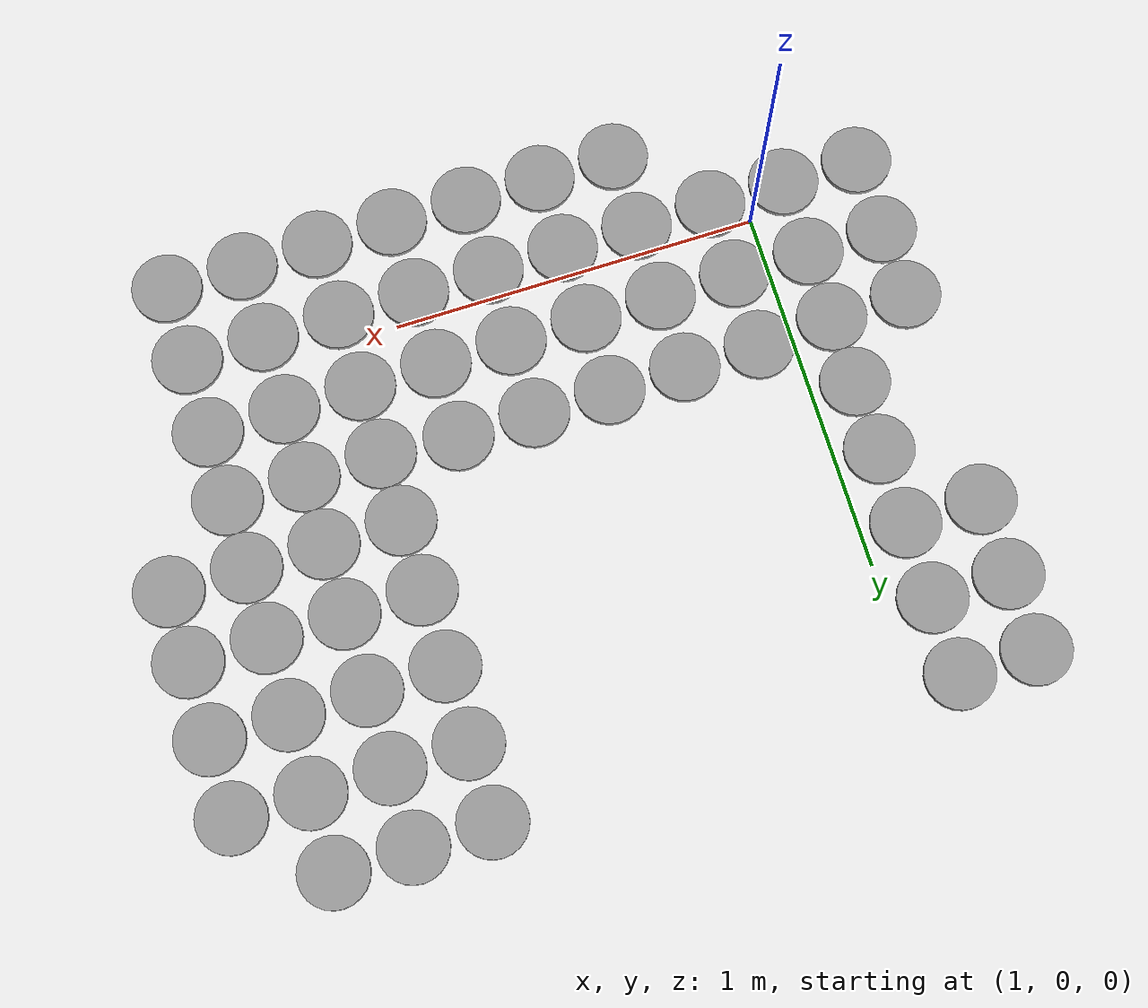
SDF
<sdf version="1.6">
 <world name="default">
  <model name="unit_cylinder_clone_137">
   <pose>0.67 0.92 0.008111 0 -0 0</pose>
   <link name="link">
    <inertial>
     <mass>1</mass>
     <inertia><ixx>0.145833</ixx><ixy>0</ixy><ixz>0</ixz><iyy>0.145833</iyy><iyz>0</iyz><izz>0.125</izz></inertia>
    </inertial>
    <collision name="collision">
     <geometry><cylinder><radius>0.0950718</radius><length>0.0162339</length></cylinder></geometry>
     <max_contacts>5</max_contacts>
    </collision>
    <visual name="visual">
     <geometry><cylinder><radius>0.0950718</radius><length>0.0162339</length></cylinder></geometry>
     <material>
      <script><name>Gazebo/Grey</name><uri>file://media/materials/scripts/gazebo.material</uri></script>
     </material>
    </visual>
   </link>
  </model>
  <model name="unit_cylinder_clone_138">
   <pose>0.67 1.13 0.008111 0 -0 0</pose>
   <link name="link">
    <inertial>
     <mass>1</mass>
     <inertia><ixx>0.145833</ixx><ixy>0</ixy><ixz>0</ixz><iyy>0.145833</iyy><iyz>0</iyz><izz>0.125</izz></inertia>
    </inertial>
    <collision name="collision">
     <geometry><cylinder><radius>0.0950718</radius><length>0.0162339</length></cylinder></geometry>
     <max_contacts>5</max_contacts>
    </collision>
    <visual name="visual">
     <geometry><cylinder><radius>0.0950718</radius><length>0.0162339</length></cylinder></geometry>
     <material>
      <script><name>Gazebo/Grey</name><uri>file://media/materials/scripts/gazebo.material</uri></script>
     </material>
    </visual>
   </link>
  </model>
  <model name="unit_cylinder_clone_139">
   <pose>0.67 1.34 0.008111 0 -0 0</pose>
   <link name="link">
    <inertial>
     <mass>1</mass>
     <inertia><ixx>0.145833</ixx><ixy>0</ixy><ixz>0</ixz><iyy>0.145833</iyy><iyz>0</iyz><izz>0.125</izz></inertia>
    </inertial>
    <collision name="collision">
     <geometry><cylinder><radius>0.0950718</radius><length>0.0162339</length></cylinder></geometry>
     <max_contacts>5</max_contacts>
    </collision>
    <visual name="visual">
     <geometry><cylinder><radius>0.0950718</radius><length>0.0162339</length></cylinder></geometry>
     <material>
      <script><name>Gazebo/Grey</name><uri>file://media/materials/scripts/gazebo.material</uri></script>
     </material>
    </visual>
   </link>
  </model>
  <model name="unit_cylinder_clone_140">
   <pose>0.88 0.515077 0.008111 0 -0 0</pose>
   <link name="link">
    <inertial>
     <mass>1</mass>
     <inertia><ixx>0.145833</ixx><ixy>0</ixy><ixz>0</ixz><iyy>0.145833</iyy><iyz>0</iyz><izz>0.125</izz></inertia>
    </inertial>
    <collision name="collision">
     <geometry><cylinder><radius>0.0950718</radius><length>0.0162339</length></cylinder></geometry>
     <max_contacts>5</max_contacts>
    </collision>
    <visual name="visual">
     <geometry><cylinder><radius>0.0950718</radius><length>0.0162339</length></cylinder></geometry>
     <material>
      <script><name>Gazebo/Grey</name><uri>file://media/materials/scripts/gazebo.material</uri></script>
     </material>
    </visual>
   </link>
  </model>
  <model name="unit_cylinder_clone_141">
   <pose>0.88 0.71 0.008111 0 -0 0</pose>
   <link name="link">
    <inertial>
     <mass>1</mass>
     <inertia><ixx>0.145833</ixx><ixy>0</ixy><ixz>0</ixz><iyy>0.145833</iyy><iyz>0</iyz><izz>0.125</izz></inertia>
    </inertial>
    <collision name="collision">
     <geometry><cylinder><radius>0.0950718</radius><length>0.0162339</length></cylinder></geometry>
     <max_contacts>5</max_contacts>
    </collision>
    <visual name="visual">
     <geometry><cylinder><radius>0.0950718</radius><length>0.0162339</length></cylinder></geometry>
     <material>
      <script><name>Gazebo/Grey</name><uri>file://media/materials/scripts/gazebo.material</uri></script>
     </material>
    </visual>
   </link>
  </model>
  <model name="unit_cylinder_clone_142">
   <pose>0.88 0.92 0.008111 0 -0 0</pose>
   <link name="link">
    <inertial>
     <mass>1</mass>
     <inertia><ixx>0.145833</ixx><ixy>0</ixy><ixz>0</ixz><iyy>0.145833</iyy><iyz>0</iyz><izz>0.125</izz></inertia>
    </inertial>
    <collision name="collision">
     <geometry><cylinder><radius>0.0950718</radius><length>0.0162339</length></cylinder></geometry>
     <max_contacts>5</max_contacts>
    </collision>
    <visual name="visual">
     <geometry><cylinder><radius>0.0950718</radius><length>0.0162339</length></cylinder></geometry>
     <material>
      <script><name>Gazebo/Grey</name><uri>file://media/materials/scripts/gazebo.material</uri></script>
     </material>
    </visual>
   </link>
  </model>
  <model name="unit_cylinder_clone_143">
   <pose>0.88 1.13 0.008111 0 -0 0</pose>
   <link name="link">
    <inertial>
     <mass>1</mass>
     <inertia><ixx>0.145833</ixx><ixy>0</ixy><ixz>0</ixz><iyy>0.145833</iyy><iyz>0</iyz><izz>0.125</izz></inertia>
    </inertial>
    <collision name="collision">
     <geometry><cylinder><radius>0.0950718</radius><length>0.0162339</length></cylinder></geometry>
     <max_contacts>5</max_contacts>
    </collision>
    <visual name="visual">
     <geometry><cylinder><radius>0.0950718</radius><length>0.0162339</length></cylinder></geometry>
     <material>
      <script><name>Gazebo/Grey</name><uri>file://media/materials/scripts/gazebo.material</uri></script>
     </material>
    </visual>
   </link>
  </model>
  <model name="unit_cylinder_clone_144">
   <pose>0.88 1.34 0.008111 0 -0 0</pose>
   <link name="link">
    <inertial>
     <mass>1</mass>
     <inertia><ixx>0.145833</ixx><ixy>0</ixy><ixz>0</ixz><iyy>0.145833</iyy><iyz>0</iyz><izz>0.125</izz></inertia>
    </inertial>
    <collision name="collision">
     <geometry><cylinder><radius>0.0950718</radius><length>0.0162339</length></cylinder></geometry>
     <max_contacts>5</max_contacts>
    </collision>
    <visual name="visual">
     <geometry><cylinder><radius>0.0950718</radius><length>0.0162339</length></cylinder></geometry>
     <material>
      <script><name>Gazebo/Grey</name><uri>file://media/materials/scripts/gazebo.material</uri></script>
     </material>
    </visual>
   </link>
  </model>
  <model name="unit_cylinder_clone_170">
   <pose>2.14 0.515077 0.008111 0 -0 0</pose>
   <link name="link">
    <inertial>
     <mass>1</mass>
     <inertia><ixx>0.145833</ixx><ixy>0</ixy><ixz>0</ixz><iyy>0.145833</iyy><iyz>0</iyz><izz>0.125</izz></inertia>
    </inertial>
    <collision name="collision">
     <geometry><cylinder><radius>0.0950718</radius><length>0.0162339</length></cylinder></geometry>
     <max_contacts>5</max_contacts>
    </collision>
    <visual name="visual">
     <geometry><cylinder><radius>0.0950718</radius><length>0.0162339</length></cylinder></geometry>
     <material>
      <script><name>Gazebo/Grey</name><uri>file://media/materials/scripts/gazebo.material</uri></script>
     </material>
    </visual>
   </link>
  </model>
  <model name="unit_cylinder_clone_171">
   <pose>2.14 0.71 0.008111 0 -0 0</pose>
   <link name="link">
    <inertial>
     <mass>1</mass>
     <inertia><ixx>0.145833</ixx><ixy>0</ixy><ixz>0</ixz><iyy>0.145833</iyy><iyz>0</iyz><izz>0.125</izz></inertia>
    </inertial>
    <collision name="collision">
     <geometry><cylinder><radius>0.0950718</radius><length>0.0162339</length></cylinder></geometry>
     <max_contacts>5</max_contacts>
    </collision>
    <visual name="visual">
     <geometry><cylinder><radius>0.0950718</radius><length>0.0162339</length></cylinder></geometry>
     <material>
      <script><name>Gazebo/Grey</name><uri>file://media/materials/scripts/gazebo.material</uri></script>
     </material>
    </visual>
   </link>
  </model>
  <model name="unit_cylinder_clone_172">
   <pose>2.14 0.92 0.008111 0 -0 0</pose>
   <link name="link">
    <inertial>
     <mass>1</mass>
     <inertia><ixx>0.145833</ixx><ixy>0</ixy><ixz>0</ixz><iyy>0.145833</iyy><iyz>0</iyz><izz>0.125</izz></inertia>
    </inertial>
    <collision name="collision">
     <geometry><cylinder><radius>0.0950718</radius><length>0.0162339</length></cylinder></geometry>
     <max_contacts>5</max_contacts>
    </collision>
    <visual name="visual">
     <geometry><cylinder><radius>0.0950718</radius><length>0.0162339</length></cylinder></geometry>
     <material>
      <script><name>Gazebo/Grey</name><uri>file://media/materials/scripts/gazebo.material</uri></script>
     </material>
    </visual>
   </link>
  </model>
  <model name="unit_cylinder_clone_173">
   <pose>2.14 1.13 0.008111 0 -0 0</pose>
   <link name="link">
    <inertial>
     <mass>1</mass>
     <inertia><ixx>0.145833</ixx><ixy>0</ixy><ixz>0</ixz><iyy>0.145833</iyy><iyz>0</iyz><izz>0.125</izz></inertia>
    </inertial>
    <collision name="collision">
     <geometry><cylinder><radius>0.0950718</radius><length>0.0162339</length></cylinder></geometry>
     <max_contacts>5</max_contacts>
    </collision>
    <visual name="visual">
     <geometry><cylinder><radius>0.0950718</radius><length>0.0162339</length></cylinder></geometry>
     <material>
      <script><name>Gazebo/Grey</name><uri>file://media/materials/scripts/gazebo.material</uri></script>
     </material>
    </visual>
   </link>
  </model>
  <model name="unit_cylinder_clone_174">
   <pose>2.14 1.34 0.008111 0 -0 0</pose>
   <link name="link">
    <inertial>
     <mass>1</mass>
     <inertia><ixx>0.145833</ixx><ixy>0</ixy><ixz>0</ixz><iyy>0.145833</iyy><iyz>0</iyz><izz>0.125</izz></inertia>
    </inertial>
    <collision name="collision">
     <geometry><cylinder><radius>0.0950718</radius><length>0.0162339</length></cylinder></geometry>
     <max_contacts>5</max_contacts>
    </collision>
    <visual name="visual">
     <geometry><cylinder><radius>0.0950718</radius><length>0.0162339</length></cylinder></geometry>
     <material>
      <script><name>Gazebo/Grey</name><uri>file://media/materials/scripts/gazebo.material</uri></script>
     </material>
    </visual>
   </link>
  </model>
  <model name="unit_cylinder_clone_175">
   <pose>2.35 0.515077 0.008111 0 -0 0</pose>
   <link name="link">
    <inertial>
     <mass>1</mass>
     <inertia><ixx>0.145833</ixx><ixy>0</ixy><ixz>0</ixz><iyy>0.145833</iyy><iyz>0</iyz><izz>0.125</izz></inertia>
    </inertial>
    <collision name="collision">
     <geometry><cylinder><radius>0.0950718</radius><length>0.0162339</length></cylinder></geometry>
     <max_contacts>5</max_contacts>
    </collision>
    <visual name="visual">
     <geometry><cylinder><radius>0.0950718</radius><length>0.0162339</length></cylinder></geometry>
     <material>
      <script><name>Gazebo/Grey</name><uri>file://media/materials/scripts/gazebo.material</uri></script>
     </material>
    </visual>
   </link>
  </model>
  <model name="unit_cylinder_clone_176">
   <pose>2.35 0.71 0.008111 0 -0 0</pose>
   <link name="link">
    <inertial>
     <mass>1</mass>
     <inertia><ixx>0.145833</ixx><ixy>0</ixy><ixz>0</ixz><iyy>0.145833</iyy><iyz>0</iyz><izz>0.125</izz></inertia>
    </inertial>
    <collision name="collision">
     <geometry><cylinder><radius>0.0950718</radius><length>0.0162339</length></cylinder></geometry>
     <max_contacts>5</max_contacts>
    </collision>
    <visual name="visual">
     <geometry><cylinder><radius>0.0950718</radius><length>0.0162339</length></cylinder></geometry>
     <material>
      <script><name>Gazebo/Grey</name><uri>file://media/materials/scripts/gazebo.material</uri></script>
     </material>
    </visual>
   </link>
  </model>
  <model name="unit_cylinder_clone_177">
   <pose>2.35 0.92 0.008111 0 -0 0</pose>
   <link name="link">
    <inertial>
     <mass>1</mass>
     <inertia><ixx>0.145833</ixx><ixy>0</ixy><ixz>0</ixz><iyy>0.145833</iyy><iyz>0</iyz><izz>0.125</izz></inertia>
    </inertial>
    <collision name="collision">
     <geometry><cylinder><radius>0.0950718</radius><length>0.0162339</length></cylinder></geometry>
     <max_contacts>5</max_contacts>
    </collision>
    <visual name="visual">
     <geometry><cylinder><radius>0.0950718</radius><length>0.0162339</length></cylinder></geometry>
     <material>
      <script><name>Gazebo/Grey</name><uri>file://media/materials/scripts/gazebo.material</uri></script>
     </material>
    </visual>
   </link>
  </model>
  <model name="unit_cylinder_clone_178">
   <pose>2.35 1.13 0.008111 0 -0 0</pose>
   <link name="link">
    <inertial>
     <mass>1</mass>
     <inertia><ixx>0.145833</ixx><ixy>0</ixy><ixz>0</ixz><iyy>0.145833</iyy><iyz>0</iyz><izz>0.125</izz></inertia>
    </inertial>
    <collision name="collision">
     <geometry><cylinder><radius>0.0950718</radius><length>0.0162339</length></cylinder></geometry>
     <max_contacts>5</max_contacts>
    </collision>
    <visual name="visual">
     <geometry><cylinder><radius>0.0950718</radius><length>0.0162339</length></cylinder></geometry>
     <material>
      <script><name>Gazebo/Grey</name><uri>file://media/materials/scripts/gazebo.material</uri></script>
     </material>
    </visual>
   </link>
  </model>
  <model name="unit_cylinder_clone_179">
   <pose>2.35 1.34 0.008111 0 -0 0</pose>
   <link name="link">
    <inertial>
     <mass>1</mass>
     <inertia><ixx>0.145833</ixx><ixy>0</ixy><ixz>0</ixz><iyy>0.145833</iyy><iyz>0</iyz><izz>0.125</izz></inertia>
    </inertial>
    <collision name="collision">
     <geometry><cylinder><radius>0.0950718</radius><length>0.0162339</length></cylinder></geometry>
     <max_contacts>5</max_contacts>
    </collision>
    <visual name="visual">
     <geometry><cylinder><radius>0.0950718</radius><length>0.0162339</length></cylinder></geometry>
     <material>
      <script><name>Gazebo/Grey</name><uri>file://media/materials/scripts/gazebo.material</uri></script>
     </material>
    </visual>
   </link>
  </model>
  <model name="unit_cylinder_clone_180">
   <pose>2.56 0.515077 0.008111 0 -0 0</pose>
   <link name="link">
    <inertial>
     <mass>1</mass>
     <inertia><ixx>0.145833</ixx><ixy>0</ixy><ixz>0</ixz><iyy>0.145833</iyy><iyz>0</iyz><izz>0.125</izz></inertia>
    </inertial>
    <collision name="collision">
     <geometry><cylinder><radius>0.0950718</radius><length>0.0162339</length></cylinder></geometry>
     <max_contacts>5</max_contacts>
    </collision>
    <visual name="visual">
     <geometry><cylinder><radius>0.0950718</radius><length>0.0162339</length></cylinder></geometry>
     <material>
      <script><name>Gazebo/Grey</name><uri>file://media/materials/scripts/gazebo.material</uri></script>
     </material>
    </visual>
   </link>
  </model>
  <model name="unit_cylinder_clone_181">
   <pose>2.56 0.71 0.008111 0 -0 0</pose>
   <link name="link">
    <inertial>
     <mass>1</mass>
     <inertia><ixx>0.145833</ixx><ixy>0</ixy><ixz>0</ixz><iyy>0.145833</iyy><iyz>0</iyz><izz>0.125</izz></inertia>
    </inertial>
    <collision name="collision">
     <geometry><cylinder><radius>0.0950718</radius><length>0.0162339</length></cylinder></geometry>
     <max_contacts>5</max_contacts>
    </collision>
    <visual name="visual">
     <geometry><cylinder><radius>0.0950718</radius><length>0.0162339</length></cylinder></geometry>
     <material>
      <script><name>Gazebo/Grey</name><uri>file://media/materials/scripts/gazebo.material</uri></script>
     </material>
    </visual>
   </link>
  </model>
  <model name="unit_cylinder_clone_182">
   <pose>2.56 0.92 0.008111 0 -0 0</pose>
   <link name="link">
    <inertial>
     <mass>1</mass>
     <inertia><ixx>0.145833</ixx><ixy>0</ixy><ixz>0</ixz><iyy>0.145833</iyy><iyz>0</iyz><izz>0.125</izz></inertia>
    </inertial>
    <collision name="collision">
     <geometry><cylinder><radius>0.0950718</radius><length>0.0162339</length></cylinder></geometry>
     <max_contacts>5</max_contacts>
    </collision>
    <visual name="visual">
     <geometry><cylinder><radius>0.0950718</radius><length>0.0162339</length></cylinder></geometry>
     <material>
      <script><name>Gazebo/Grey</name><uri>file://media/materials/scripts/gazebo.material</uri></script>
     </material>
    </visual>
   </link>
  </model>
  <model name="unit_cylinder_clone_183">
   <pose>2.56 1.13 0.008111 0 -0 0</pose>
   <link name="link">
    <inertial>
     <mass>1</mass>
     <inertia><ixx>0.145833</ixx><ixy>0</ixy><ixz>0</ixz><iyy>0.145833</iyy><iyz>0</iyz><izz>0.125</izz></inertia>
    </inertial>
    <collision name="collision">
     <geometry><cylinder><radius>0.0950718</radius><length>0.0162339</length></cylinder></geometry>
     <max_contacts>5</max_contacts>
    </collision>
    <visual name="visual">
     <geometry><cylinder><radius>0.0950718</radius><length>0.0162339</length></cylinder></geometry>
     <material>
      <script><name>Gazebo/Grey</name><uri>file://media/materials/scripts/gazebo.material</uri></script>
     </material>
    </visual>
   </link>
  </model>
  <model name="unit_cylinder_clone_184">
   <pose>2.56 1.34 0.008111 0 -0 0</pose>
   <link name="link">
    <inertial>
     <mass>1</mass>
     <inertia><ixx>0.145833</ixx><ixy>0</ixy><ixz>0</ixz><iyy>0.145833</iyy><iyz>0</iyz><izz>0.125</izz></inertia>
    </inertial>
    <collision name="collision">
     <geometry><cylinder><radius>0.0950718</radius><length>0.0162339</length></cylinder></geometry>
     <max_contacts>5</max_contacts>
    </collision>
    <visual name="visual">
     <geometry><cylinder><radius>0.0950718</radius><length>0.0162339</length></cylinder></geometry>
     <material>
      <script><name>Gazebo/Grey</name><uri>file://media/materials/scripts/gazebo.material</uri></script>
     </material>
    </visual>
   </link>
  </model>
  <model name="unit_cylinder_clone_185">
   <pose>2.77 0.515077 0.008111 0 -0 0</pose>
   <link name="link">
    <inertial>
     <mass>1</mass>
     <inertia><ixx>0.145833</ixx><ixy>0</ixy><ixz>0</ixz><iyy>0.145833</iyy><iyz>0</iyz><izz>0.125</izz></inertia>
    </inertial>
    <collision name="collision">
     <geometry><cylinder><radius>0.0950718</radius><length>0.0162339</length></cylinder></geometry>
     <max_contacts>5</max_contacts>
    </collision>
    <visual name="visual">
     <geometry><cylinder><radius>0.0950718</radius><length>0.0162339</length></cylinder></geometry>
     <material>
      <script><name>Gazebo/Grey</name><uri>file://media/materials/scripts/gazebo.material</uri></script>
     </material>
    </visual>
   </link>
  </model>
  <model name="unit_cylinder_clone_186">
   <pose>2.77 0.71 0.008111 0 -0 0</pose>
   <link name="link">
    <inertial>
     <mass>1</mass>
     <inertia><ixx>0.145833</ixx><ixy>0</ixy><ixz>0</ixz><iyy>0.145833</iyy><iyz>0</iyz><izz>0.125</izz></inertia>
    </inertial>
    <collision name="collision">
     <geometry><cylinder><radius>0.0950718</radius><length>0.0162339</length></cylinder></geometry>
     <max_contacts>5</max_contacts>
    </collision>
    <visual name="visual">
     <geometry><cylinder><radius>0.0950718</radius><length>0.0162339</length></cylinder></geometry>
     <material>
      <script><name>Gazebo/Grey</name><uri>file://media/materials/scripts/gazebo.material</uri></script>
     </material>
    </visual>
   </link>
  </model>
  <model name="unit_cylinder_clone_187">
   <pose>2.77 0.92 0.008111 0 -0 0</pose>
   <link name="link">
    <inertial>
     <mass>1</mass>
     <inertia><ixx>0.145833</ixx><ixy>0</ixy><ixz>0</ixz><iyy>0.145833</iyy><iyz>0</iyz><izz>0.125</izz></inertia>
    </inertial>
    <collision name="collision">
     <geometry><cylinder><radius>0.0950718</radius><length>0.0162339</length></cylinder></geometry>
     <max_contacts>5</max_contacts>
    </collision>
    <visual name="visual">
     <geometry><cylinder><radius>0.0950718</radius><length>0.0162339</length></cylinder></geometry>
     <material>
      <script><name>Gazebo/Grey</name><uri>file://media/materials/scripts/gazebo.material</uri></script>
     </material>
    </visual>
   </link>
  </model>
  <model name="unit_cylinder_clone_188">
   <pose>2.77 1.13 0.008111 0 -0 0</pose>
   <link name="link">
    <inertial>
     <mass>1</mass>
     <inertia><ixx>0.145833</ixx><ixy>0</ixy><ixz>0</ixz><iyy>0.145833</iyy><iyz>0</iyz><izz>0.125</izz></inertia>
    </inertial>
    <collision name="collision">
     <geometry><cylinder><radius>0.0950718</radius><length>0.0162339</length></cylinder></geometry>
     <max_contacts>5</max_contacts>
    </collision>
    <visual name="visual">
     <geometry><cylinder><radius>0.0950718</radius><length>0.0162339</length></cylinder></geometry>
     <material>
      <script><name>Gazebo/Grey</name><uri>file://media/materials/scripts/gazebo.material</uri></script>
     </material>
    </visual>
   </link>
  </model>
  <model name="unit_cylinder_clone_387">
   <pose>0.67 -0.08 0.008111 0 -0 0</pose>
   <link name="link">
    <inertial>
     <mass>1</mass>
     <inertia><ixx>0.145833</ixx><ixy>0</ixy><ixz>0</ixz><iyy>0.145833</iyy><iyz>0</iyz><izz>0.125</izz></inertia>
    </inertial>
    <collision name="collision">
     <geometry><cylinder><radius>0.0950718</radius><length>0.0162339</length></cylinder></geometry>
     <max_contacts>5</max_contacts>
    </collision>
    <visual name="visual">
     <geometry><cylinder><radius>0.0950718</radius><length>0.0162339</length></cylinder></geometry>
     <material>
      <script><name>Gazebo/Grey</name><uri>file://media/materials/scripts/gazebo.material</uri></script>
     </material>
    </visual>
   </link>
  </model>
  <model name="unit_cylinder_clone_388">
   <pose>0.67 0.13 0.008111 0 -0 0</pose>
   <link name="link">
    <inertial>
     <mass>1</mass>
     <inertia><ixx>0.145833</ixx><ixy>0</ixy><ixz>0</ixz><iyy>0.145833</iyy><iyz>0</iyz><izz>0.125</izz></inertia>
    </inertial>
    <collision name="collision">
     <geometry><cylinder><radius>0.0950718</radius><length>0.0162339</length></cylinder></geometry>
     <max_contacts>5</max_contacts>
    </collision>
    <visual name="visual">
     <geometry><cylinder><radius>0.0950718</radius><length>0.0162339</length></cylinder></geometry>
     <material>
      <script><name>Gazebo/Grey</name><uri>file://media/materials/scripts/gazebo.material</uri></script>
     </material>
    </visual>
   </link>
  </model>
  <model name="unit_cylinder_clone_389">
   <pose>0.67 0.324923 0.008111 0 -0 0</pose>
   <link name="link">
    <inertial>
     <mass>1</mass>
     <inertia><ixx>0.145833</ixx><ixy>0</ixy><ixz>0</ixz><iyy>0.145833</iyy><iyz>0</iyz><izz>0.125</izz></inertia>
    </inertial>
    <collision name="collision">
     <geometry><cylinder><radius>0.0950718</radius><length>0.0162339</length></cylinder></geometry>
     <max_contacts>5</max_contacts>
    </collision>
    <visual name="visual">
     <geometry><cylinder><radius>0.0950718</radius><length>0.0162339</length></cylinder></geometry>
     <material>
      <script><name>Gazebo/Grey</name><uri>file://media/materials/scripts/gazebo.material</uri></script>
     </material>
    </visual>
   </link>
  </model>
  <model name="unit_cylinder_clone_392">
   <pose>0.88 -0.08 0.008111 0 -0 0</pose>
   <link name="link">
    <inertial>
     <mass>1</mass>
     <inertia><ixx>0.145833</ixx><ixy>0</ixy><ixz>0</ixz><iyy>0.145833</iyy><iyz>0</iyz><izz>0.125</izz></inertia>
    </inertial>
    <collision name="collision">
     <geometry><cylinder><radius>0.0950718</radius><length>0.0162339</length></cylinder></geometry>
     <max_contacts>5</max_contacts>
    </collision>
    <visual name="visual">
     <geometry><cylinder><radius>0.0950718</radius><length>0.0162339</length></cylinder></geometry>
     <material>
      <script><name>Gazebo/Grey</name><uri>file://media/materials/scripts/gazebo.material</uri></script>
     </material>
    </visual>
   </link>
  </model>
  <model name="unit_cylinder_clone_393">
   <pose>0.88 0.13 0.008111 0 -0 0</pose>
   <link name="link">
    <inertial>
     <mass>1</mass>
     <inertia><ixx>0.145833</ixx><ixy>0</ixy><ixz>0</ixz><iyy>0.145833</iyy><iyz>0</iyz><izz>0.125</izz></inertia>
    </inertial>
    <collision name="collision">
     <geometry><cylinder><radius>0.0950718</radius><length>0.0162339</length></cylinder></geometry>
     <max_contacts>5</max_contacts>
    </collision>
    <visual name="visual">
     <geometry><cylinder><radius>0.0950718</radius><length>0.0162339</length></cylinder></geometry>
     <material>
      <script><name>Gazebo/Grey</name><uri>file://media/materials/scripts/gazebo.material</uri></script>
     </material>
    </visual>
   </link>
  </model>
  <model name="unit_cylinder_clone_394">
   <pose>0.88 0.324923 0.008111 0 -0 0</pose>
   <link name="link">
    <inertial>
     <mass>1</mass>
     <inertia><ixx>0.145833</ixx><ixy>0</ixy><ixz>0</ixz><iyy>0.145833</iyy><iyz>0</iyz><izz>0.125</izz></inertia>
    </inertial>
    <collision name="collision">
     <geometry><cylinder><radius>0.0950718</radius><length>0.0162339</length></cylinder></geometry>
     <max_contacts>5</max_contacts>
    </collision>
    <visual name="visual">
     <geometry><cylinder><radius>0.0950718</radius><length>0.0162339</length></cylinder></geometry>
     <material>
      <script><name>Gazebo/Grey</name><uri>file://media/materials/scripts/gazebo.material</uri></script>
     </material>
    </visual>
   </link>
  </model>
  <model name="unit_cylinder_clone_397">
   <pose>1.09 -0.08 0.008111 0 -0 0</pose>
   <link name="link">
    <inertial>
     <mass>1</mass>
     <inertia><ixx>0.145833</ixx><ixy>0</ixy><ixz>0</ixz><iyy>0.145833</iyy><iyz>0</iyz><izz>0.125</izz></inertia>
    </inertial>
    <collision name="collision">
     <geometry><cylinder><radius>0.0950718</radius><length>0.0162339</length></cylinder></geometry>
     <max_contacts>5</max_contacts>
    </collision>
    <visual name="visual">
     <geometry><cylinder><radius>0.0950718</radius><length>0.0162339</length></cylinder></geometry>
     <material>
      <script><name>Gazebo/Grey</name><uri>file://media/materials/scripts/gazebo.material</uri></script>
     </material>
    </visual>
   </link>
  </model>
  <model name="unit_cylinder_clone_398">
   <pose>1.09 0.13 0.008111 0 -0 0</pose>
   <link name="link">
    <inertial>
     <mass>1</mass>
     <inertia><ixx>0.145833</ixx><ixy>0</ixy><ixz>0</ixz><iyy>0.145833</iyy><iyz>0</iyz><izz>0.125</izz></inertia>
    </inertial>
    <collision name="collision">
     <geometry><cylinder><radius>0.0950718</radius><length>0.0162339</length></cylinder></geometry>
     <max_contacts>5</max_contacts>
    </collision>
    <visual name="visual">
     <geometry><cylinder><radius>0.0950718</radius><length>0.0162339</length></cylinder></geometry>
     <material>
      <script><name>Gazebo/Grey</name><uri>file://media/materials/scripts/gazebo.material</uri></script>
     </material>
    </visual>
   </link>
  </model>
  <model name="unit_cylinder_clone_399">
   <pose>1.09 0.34 0.008111 0 -0 0</pose>
   <link name="link">
    <inertial>
     <mass>1</mass>
     <inertia><ixx>0.145833</ixx><ixy>0</ixy><ixz>0</ixz><iyy>0.145833</iyy><iyz>0</iyz><izz>0.125</izz></inertia>
    </inertial>
    <collision name="collision">
     <geometry><cylinder><radius>0.0950718</radius><length>0.0162339</length></cylinder></geometry>
     <max_contacts>5</max_contacts>
    </collision>
    <visual name="visual">
     <geometry><cylinder><radius>0.0950718</radius><length>0.0162339</length></cylinder></geometry>
     <material>
      <script><name>Gazebo/Grey</name><uri>file://media/materials/scripts/gazebo.material</uri></script>
     </material>
    </visual>
   </link>
  </model>
  <model name="unit_cylinder_clone_401">
   <pose>1.3 -0.29 0.008111 0 -0 0</pose>
   <link name="link">
    <inertial>
     <mass>1</mass>
     <inertia><ixx>0.145833</ixx><ixy>0</ixy><ixz>0</ixz><iyy>0.145833</iyy><iyz>0</iyz><izz>0.125</izz></inertia>
    </inertial>
    <collision name="collision">
     <geometry><cylinder><radius>0.0950718</radius><length>0.0162339</length></cylinder></geometry>
     <max_contacts>5</max_contacts>
    </collision>
    <visual name="visual">
     <geometry><cylinder><radius>0.0950718</radius><length>0.0162339</length></cylinder></geometry>
     <material>
      <script><name>Gazebo/Grey</name><uri>file://media/materials/scripts/gazebo.material</uri></script>
     </material>
    </visual>
   </link>
  </model>
  <model name="unit_cylinder_clone_402">
   <pose>1.3 -0.08 0.008111 0 -0 0</pose>
   <link name="link">
    <inertial>
     <mass>1</mass>
     <inertia><ixx>0.145833</ixx><ixy>0</ixy><ixz>0</ixz><iyy>0.145833</iyy><iyz>0</iyz><izz>0.125</izz></inertia>
    </inertial>
    <collision name="collision">
     <geometry><cylinder><radius>0.0950718</radius><length>0.0162339</length></cylinder></geometry>
     <max_contacts>5</max_contacts>
    </collision>
    <visual name="visual">
     <geometry><cylinder><radius>0.0950718</radius><length>0.0162339</length></cylinder></geometry>
     <material>
      <script><name>Gazebo/Grey</name><uri>file://media/materials/scripts/gazebo.material</uri></script>
     </material>
    </visual>
   </link>
  </model>
  <model name="unit_cylinder_clone_403">
   <pose>1.3 0.13 0.008111 0 -0 0</pose>
   <link name="link">
    <inertial>
     <mass>1</mass>
     <inertia><ixx>0.145833</ixx><ixy>0</ixy><ixz>0</ixz><iyy>0.145833</iyy><iyz>0</iyz><izz>0.125</izz></inertia>
    </inertial>
    <collision name="collision">
     <geometry><cylinder><radius>0.0950718</radius><length>0.0162339</length></cylinder></geometry>
     <max_contacts>5</max_contacts>
    </collision>
    <visual name="visual">
     <geometry><cylinder><radius>0.0950718</radius><length>0.0162339</length></cylinder></geometry>
     <material>
      <script><name>Gazebo/Grey</name><uri>file://media/materials/scripts/gazebo.material</uri></script>
     </material>
    </visual>
   </link>
  </model>
  <model name="unit_cylinder_clone_404">
   <pose>1.3 0.34 0.008111 0 -0 0</pose>
   <link name="link">
    <inertial>
     <mass>1</mass>
     <inertia><ixx>0.145833</ixx><ixy>0</ixy><ixz>0</ixz><iyy>0.145833</iyy><iyz>0</iyz><izz>0.125</izz></inertia>
    </inertial>
    <collision name="collision">
     <geometry><cylinder><radius>0.0950718</radius><length>0.0162339</length></cylinder></geometry>
     <max_contacts>5</max_contacts>
    </collision>
    <visual name="visual">
     <geometry><cylinder><radius>0.0950718</radius><length>0.0162339</length></cylinder></geometry>
     <material>
      <script><name>Gazebo/Grey</name><uri>file://media/materials/scripts/gazebo.material</uri></script>
     </material>
    </visual>
   </link>
  </model>
  <model name="unit_cylinder_clone_406">
   <pose>1.51 -0.29 0.008111 0 -0 0</pose>
   <link name="link">
    <inertial>
     <mass>1</mass>
     <inertia><ixx>0.145833</ixx><ixy>0</ixy><ixz>0</ixz><iyy>0.145833</iyy><iyz>0</iyz><izz>0.125</izz></inertia>
    </inertial>
    <collision name="collision">
     <geometry><cylinder><radius>0.0950718</radius><length>0.0162339</length></cylinder></geometry>
     <max_contacts>5</max_contacts>
    </collision>
    <visual name="visual">
     <geometry><cylinder><radius>0.0950718</radius><length>0.0162339</length></cylinder></geometry>
     <material>
      <script><name>Gazebo/Grey</name><uri>file://media/materials/scripts/gazebo.material</uri></script>
     </material>
    </visual>
   </link>
  </model>
  <model name="unit_cylinder_clone_407">
   <pose>1.51 -0.08 0.008111 0 -0 0</pose>
   <link name="link">
    <inertial>
     <mass>1</mass>
     <inertia><ixx>0.145833</ixx><ixy>0</ixy><ixz>0</ixz><iyy>0.145833</iyy><iyz>0</iyz><izz>0.125</izz></inertia>
    </inertial>
    <collision name="collision">
     <geometry><cylinder><radius>0.0950718</radius><length>0.0162339</length></cylinder></geometry>
     <max_contacts>5</max_contacts>
    </collision>
    <visual name="visual">
     <geometry><cylinder><radius>0.0950718</radius><length>0.0162339</length></cylinder></geometry>
     <material>
      <script><name>Gazebo/Grey</name><uri>file://media/materials/scripts/gazebo.material</uri></script>
     </material>
    </visual>
   </link>
  </model>
  <model name="unit_cylinder_clone_408">
   <pose>1.51 0.13 0.008111 0 -0 0</pose>
   <link name="link">
    <inertial>
     <mass>1</mass>
     <inertia><ixx>0.145833</ixx><ixy>0</ixy><ixz>0</ixz><iyy>0.145833</iyy><iyz>0</iyz><izz>0.125</izz></inertia>
    </inertial>
    <collision name="collision">
     <geometry><cylinder><radius>0.0950718</radius><length>0.0162339</length></cylinder></geometry>
     <max_contacts>5</max_contacts>
    </collision>
    <visual name="visual">
     <geometry><cylinder><radius>0.0950718</radius><length>0.0162339</length></cylinder></geometry>
     <material>
      <script><name>Gazebo/Grey</name><uri>file://media/materials/scripts/gazebo.material</uri></script>
     </material>
    </visual>
   </link>
  </model>
  <model name="unit_cylinder_clone_409">
   <pose>1.51 0.34 0.008111 0 -0 0</pose>
   <link name="link">
    <inertial>
     <mass>1</mass>
     <inertia><ixx>0.145833</ixx><ixy>0</ixy><ixz>0</ixz><iyy>0.145833</iyy><iyz>0</iyz><izz>0.125</izz></inertia>
    </inertial>
    <collision name="collision">
     <geometry><cylinder><radius>0.0950718</radius><length>0.0162339</length></cylinder></geometry>
     <max_contacts>5</max_contacts>
    </collision>
    <visual name="visual">
     <geometry><cylinder><radius>0.0950718</radius><length>0.0162339</length></cylinder></geometry>
     <material>
      <script><name>Gazebo/Grey</name><uri>file://media/materials/scripts/gazebo.material</uri></script>
     </material>
    </visual>
   </link>
  </model>
  <model name="unit_cylinder_clone_411">
   <pose>1.72 -0.29 0.008111 0 -0 0</pose>
   <link name="link">
    <inertial>
     <mass>1</mass>
     <inertia><ixx>0.145833</ixx><ixy>0</ixy><ixz>0</ixz><iyy>0.145833</iyy><iyz>0</iyz><izz>0.125</izz></inertia>
    </inertial>
    <collision name="collision">
     <geometry><cylinder><radius>0.0950718</radius><length>0.0162339</length></cylinder></geometry>
     <max_contacts>5</max_contacts>
    </collision>
    <visual name="visual">
     <geometry><cylinder><radius>0.0950718</radius><length>0.0162339</length></cylinder></geometry>
     <material>
      <script><name>Gazebo/Grey</name><uri>file://media/materials/scripts/gazebo.material</uri></script>
     </material>
    </visual>
   </link>
  </model>
  <model name="unit_cylinder_clone_412">
   <pose>1.72 -0.08 0.008111 0 -0 0</pose>
   <link name="link">
    <inertial>
     <mass>1</mass>
     <inertia><ixx>0.145833</ixx><ixy>0</ixy><ixz>0</ixz><iyy>0.145833</iyy><iyz>0</iyz><izz>0.125</izz></inertia>
    </inertial>
    <collision name="collision">
     <geometry><cylinder><radius>0.0950718</radius><length>0.0162339</length></cylinder></geometry>
     <max_contacts>5</max_contacts>
    </collision>
    <visual name="visual">
     <geometry><cylinder><radius>0.0950718</radius><length>0.0162339</length></cylinder></geometry>
     <material>
      <script><name>Gazebo/Grey</name><uri>file://media/materials/scripts/gazebo.material</uri></script>
     </material>
    </visual>
   </link>
  </model>
  <model name="unit_cylinder_clone_413">
   <pose>1.72 0.13 0.008111 0 -0 0</pose>
   <link name="link">
    <inertial>
     <mass>1</mass>
     <inertia><ixx>0.145833</ixx><ixy>0</ixy><ixz>0</ixz><iyy>0.145833</iyy><iyz>0</iyz><izz>0.125</izz></inertia>
    </inertial>
    <collision name="collision">
     <geometry><cylinder><radius>0.0950718</radius><length>0.0162339</length></cylinder></geometry>
     <max_contacts>5</max_contacts>
    </collision>
    <visual name="visual">
     <geometry><cylinder><radius>0.0950718</radius><length>0.0162339</length></cylinder></geometry>
     <material>
      <script><name>Gazebo/Grey</name><uri>file://media/materials/scripts/gazebo.material</uri></script>
     </material>
    </visual>
   </link>
  </model>
  <model name="unit_cylinder_clone_414">
   <pose>1.72 0.34 0.008111 0 -0 0</pose>
   <link name="link">
    <inertial>
     <mass>1</mass>
     <inertia><ixx>0.145833</ixx><ixy>0</ixy><ixz>0</ixz><iyy>0.145833</iyy><iyz>0</iyz><izz>0.125</izz></inertia>
    </inertial>
    <collision name="collision">
     <geometry><cylinder><radius>0.0950718</radius><length>0.0162339</length></cylinder></geometry>
     <max_contacts>5</max_contacts>
    </collision>
    <visual name="visual">
     <geometry><cylinder><radius>0.0950718</radius><length>0.0162339</length></cylinder></geometry>
     <material>
      <script><name>Gazebo/Grey</name><uri>file://media/materials/scripts/gazebo.material</uri></script>
     </material>
    </visual>
   </link>
  </model>
  <model name="unit_cylinder_clone_416">
   <pose>1.93 -0.29 0.008111 0 -0 0</pose>
   <link name="link">
    <inertial>
     <mass>1</mass>
     <inertia><ixx>0.145833</ixx><ixy>0</ixy><ixz>0</ixz><iyy>0.145833</iyy><iyz>0</iyz><izz>0.125</izz></inertia>
    </inertial>
    <collision name="collision">
     <geometry><cylinder><radius>0.0950718</radius><length>0.0162339</length></cylinder></geometry>
     <max_contacts>5</max_contacts>
    </collision>
    <visual name="visual">
     <geometry><cylinder><radius>0.0950718</radius><length>0.0162339</length></cylinder></geometry>
     <material>
      <script><name>Gazebo/Grey</name><uri>file://media/materials/scripts/gazebo.material</uri></script>
     </material>
    </visual>
   </link>
  </model>
  <model name="unit_cylinder_clone_417">
   <pose>1.93 -0.08 0.008111 0 -0 0</pose>
   <link name="link">
    <inertial>
     <mass>1</mass>
     <inertia><ixx>0.145833</ixx><ixy>0</ixy><ixz>0</ixz><iyy>0.145833</iyy><iyz>0</iyz><izz>0.125</izz></inertia>
    </inertial>
    <collision name="collision">
     <geometry><cylinder><radius>0.0950718</radius><length>0.0162339</length></cylinder></geometry>
     <max_contacts>5</max_contacts>
    </collision>
    <visual name="visual">
     <geometry><cylinder><radius>0.0950718</radius><length>0.0162339</length></cylinder></geometry>
     <material>
      <script><name>Gazebo/Grey</name><uri>file://media/materials/scripts/gazebo.material</uri></script>
     </material>
    </visual>
   </link>
  </model>
  <model name="unit_cylinder_clone_418">
   <pose>1.93 0.13 0.008111 0 -0 0</pose>
   <link name="link">
    <inertial>
     <mass>1</mass>
     <inertia><ixx>0.145833</ixx><ixy>0</ixy><ixz>0</ixz><iyy>0.145833</iyy><iyz>0</iyz><izz>0.125</izz></inertia>
    </inertial>
    <collision name="collision">
     <geometry><cylinder><radius>0.0950718</radius><length>0.0162339</length></cylinder></geometry>
     <max_contacts>5</max_contacts>
    </collision>
    <visual name="visual">
     <geometry><cylinder><radius>0.0950718</radius><length>0.0162339</length></cylinder></geometry>
     <material>
      <script><name>Gazebo/Grey</name><uri>file://media/materials/scripts/gazebo.material</uri></script>
     </material>
    </visual>
   </link>
  </model>
  <model name="unit_cylinder_clone_419">
   <pose>1.93 0.34 0.008111 0 -0 0</pose>
   <link name="link">
    <inertial>
     <mass>1</mass>
     <inertia><ixx>0.145833</ixx><ixy>0</ixy><ixz>0</ixz><iyy>0.145833</iyy><iyz>0</iyz><izz>0.125</izz></inertia>
    </inertial>
    <collision name="collision">
     <geometry><cylinder><radius>0.0950718</radius><length>0.0162339</length></cylinder></geometry>
     <max_contacts>5</max_contacts>
    </collision>
    <visual name="visual">
     <geometry><cylinder><radius>0.0950718</radius><length>0.0162339</length></cylinder></geometry>
     <material>
      <script><name>Gazebo/Grey</name><uri>file://media/materials/scripts/gazebo.material</uri></script>
     </material>
    </visual>
   </link>
  </model>
  <model name="unit_cylinder_clone_421">
   <pose>2.14 -0.29 0.008111 0 -0 0</pose>
   <link name="link">
    <inertial>
     <mass>1</mass>
     <inertia><ixx>0.145833</ixx><ixy>0</ixy><ixz>0</ixz><iyy>0.145833</iyy><iyz>0</iyz><izz>0.125</izz></inertia>
    </inertial>
    <collision name="collision">
     <geometry><cylinder><radius>0.0950718</radius><length>0.0162339</length></cylinder></geometry>
     <max_contacts>5</max_contacts>
    </collision>
    <visual name="visual">
     <geometry><cylinder><radius>0.0950718</radius><length>0.0162339</length></cylinder></geometry>
     <material>
      <script><name>Gazebo/Grey</name><uri>file://media/materials/scripts/gazebo.material</uri></script>
     </material>
    </visual>
   </link>
  </model>
  <model name="unit_cylinder_clone_422">
   <pose>2.14 -0.08 0.008111 0 -0 0</pose>
   <link name="link">
    <inertial>
     <mass>1</mass>
     <inertia><ixx>0.145833</ixx><ixy>0</ixy><ixz>0</ixz><iyy>0.145833</iyy><iyz>0</iyz><izz>0.125</izz></inertia>
    </inertial>
    <collision name="collision">
     <geometry><cylinder><radius>0.0950718</radius><length>0.0162339</length></cylinder></geometry>
     <max_contacts>5</max_contacts>
    </collision>
    <visual name="visual">
     <geometry><cylinder><radius>0.0950718</radius><length>0.0162339</length></cylinder></geometry>
     <material>
      <script><name>Gazebo/Grey</name><uri>file://media/materials/scripts/gazebo.material</uri></script>
     </material>
    </visual>
   </link>
  </model>
  <model name="unit_cylinder_clone_423">
   <pose>2.14 0.13 0.008111 0 -0 0</pose>
   <link name="link">
    <inertial>
     <mass>1</mass>
     <inertia><ixx>0.145833</ixx><ixy>0</ixy><ixz>0</ixz><iyy>0.145833</iyy><iyz>0</iyz><izz>0.125</izz></inertia>
    </inertial>
    <collision name="collision">
     <geometry><cylinder><radius>0.0950718</radius><length>0.0162339</length></cylinder></geometry>
     <max_contacts>5</max_contacts>
    </collision>
    <visual name="visual">
     <geometry><cylinder><radius>0.0950718</radius><length>0.0162339</length></cylinder></geometry>
     <material>
      <script><name>Gazebo/Grey</name><uri>file://media/materials/scripts/gazebo.material</uri></script>
     </material>
    </visual>
   </link>
  </model>
  <model name="unit_cylinder_clone_424">
   <pose>2.14 0.324923 0.008111 0 -0 0</pose>
   <link name="link">
    <inertial>
     <mass>1</mass>
     <inertia><ixx>0.145833</ixx><ixy>0</ixy><ixz>0</ixz><iyy>0.145833</iyy><iyz>0</iyz><izz>0.125</izz></inertia>
    </inertial>
    <collision name="collision">
     <geometry><cylinder><radius>0.0950718</radius><length>0.0162339</length></cylinder></geometry>
     <max_contacts>5</max_contacts>
    </collision>
    <visual name="visual">
     <geometry><cylinder><radius>0.0950718</radius><length>0.0162339</length></cylinder></geometry>
     <material>
      <script><name>Gazebo/Grey</name><uri>file://media/materials/scripts/gazebo.material</uri></script>
     </material>
    </visual>
   </link>
  </model>
  <model name="unit_cylinder_clone_426">
   <pose>2.35 -0.29 0.008111 0 -0 0</pose>
   <link name="link">
    <inertial>
     <mass>1</mass>
     <inertia><ixx>0.145833</ixx><ixy>0</ixy><ixz>0</ixz><iyy>0.145833</iyy><iyz>0</iyz><izz>0.125</izz></inertia>
    </inertial>
    <collision name="collision">
     <geometry><cylinder><radius>0.0950718</radius><length>0.0162339</length></cylinder></geometry>
     <max_contacts>5</max_contacts>
    </collision>
    <visual name="visual">
     <geometry><cylinder><radius>0.0950718</radius><length>0.0162339</length></cylinder></geometry>
     <material>
      <script><name>Gazebo/Grey</name><uri>file://media/materials/scripts/gazebo.material</uri></script>
     </material>
    </visual>
   </link>
  </model>
  <model name="unit_cylinder_clone_427">
   <pose>2.35 -0.08 0.008111 0 -0 0</pose>
   <link name="link">
    <inertial>
     <mass>1</mass>
     <inertia><ixx>0.145833</ixx><ixy>0</ixy><ixz>0</ixz><iyy>0.145833</iyy><iyz>0</iyz><izz>0.125</izz></inertia>
    </inertial>
    <collision name="collision">
     <geometry><cylinder><radius>0.0950718</radius><length>0.0162339</length></cylinder></geometry>
     <max_contacts>5</max_contacts>
    </collision>
    <visual name="visual">
     <geometry><cylinder><radius>0.0950718</radius><length>0.0162339</length></cylinder></geometry>
     <material>
      <script><name>Gazebo/Grey</name><uri>file://media/materials/scripts/gazebo.material</uri></script>
     </material>
    </visual>
   </link>
  </model>
  <model name="unit_cylinder_clone_428">
   <pose>2.35 0.13 0.008111 0 -0 0</pose>
   <link name="link">
    <inertial>
     <mass>1</mass>
     <inertia><ixx>0.145833</ixx><ixy>0</ixy><ixz>0</ixz><iyy>0.145833</iyy><iyz>0</iyz><izz>0.125</izz></inertia>
    </inertial>
    <collision name="collision">
     <geometry><cylinder><radius>0.0950718</radius><length>0.0162339</length></cylinder></geometry>
     <max_contacts>5</max_contacts>
    </collision>
    <visual name="visual">
     <geometry><cylinder><radius>0.0950718</radius><length>0.0162339</length></cylinder></geometry>
     <material>
      <script><name>Gazebo/Grey</name><uri>file://media/materials/scripts/gazebo.material</uri></script>
     </material>
    </visual>
   </link>
  </model>
  <model name="unit_cylinder_clone_429">
   <pose>2.35 0.324923 0.008111 0 -0 0</pose>
   <link name="link">
    <inertial>
     <mass>1</mass>
     <inertia><ixx>0.145833</ixx><ixy>0</ixy><ixz>0</ixz><iyy>0.145833</iyy><iyz>0</iyz><izz>0.125</izz></inertia>
    </inertial>
    <collision name="collision">
     <geometry><cylinder><radius>0.0950718</radius><length>0.0162339</length></cylinder></geometry>
     <max_contacts>5</max_contacts>
    </collision>
    <visual name="visual">
     <geometry><cylinder><radius>0.0950718</radius><length>0.0162339</length></cylinder></geometry>
     <material>
      <script><name>Gazebo/Grey</name><uri>file://media/materials/scripts/gazebo.material</uri></script>
     </material>
    </visual>
   </link>
  </model>
  <model name="unit_cylinder_clone_431">
   <pose>2.56 -0.29 0.008111 0 -0 0</pose>
   <link name="link">
    <inertial>
     <mass>1</mass>
     <inertia><ixx>0.145833</ixx><ixy>0</ixy><ixz>0</ixz><iyy>0.145833</iyy><iyz>0</iyz><izz>0.125</izz></inertia>
    </inertial>
    <collision name="collision">
     <geometry><cylinder><radius>0.0950718</radius><length>0.0162339</length></cylinder></geometry>
     <max_contacts>5</max_contacts>
    </collision>
    <visual name="visual">
     <geometry><cylinder><radius>0.0950718</radius><length>0.0162339</length></cylinder></geometry>
     <material>
      <script><name>Gazebo/Grey</name><uri>file://media/materials/scripts/gazebo.material</uri></script>
     </material>
    </visual>
   </link>
  </model>
  <model name="unit_cylinder_clone_432">
   <pose>2.56 -0.08 0.008111 0 -0 0</pose>
   <link name="link">
    <inertial>
     <mass>1</mass>
     <inertia><ixx>0.145833</ixx><ixy>0</ixy><ixz>0</ixz><iyy>0.145833</iyy><iyz>0</iyz><izz>0.125</izz></inertia>
    </inertial>
    <collision name="collision">
     <geometry><cylinder><radius>0.0950718</radius><length>0.0162339</length></cylinder></geometry>
     <max_contacts>5</max_contacts>
    </collision>
    <visual name="visual">
     <geometry><cylinder><radius>0.0950718</radius><length>0.0162339</length></cylinder></geometry>
     <material>
      <script><name>Gazebo/Grey</name><uri>file://media/materials/scripts/gazebo.material</uri></script>
     </material>
    </visual>
   </link>
  </model>
  <model name="unit_cylinder_clone_433">
   <pose>2.56 0.13 0.008111 0 -0 0</pose>
   <link name="link">
    <inertial>
     <mass>1</mass>
     <inertia><ixx>0.145833</ixx><ixy>0</ixy><ixz>0</ixz><iyy>0.145833</iyy><iyz>0</iyz><izz>0.125</izz></inertia>
    </inertial>
    <collision name="collision">
     <geometry><cylinder><radius>0.0950718</radius><length>0.0162339</length></cylinder></geometry>
     <max_contacts>5</max_contacts>
    </collision>
    <visual name="visual">
     <geometry><cylinder><radius>0.0950718</radius><length>0.0162339</length></cylinder></geometry>
     <material>
      <script><name>Gazebo/Grey</name><uri>file://media/materials/scripts/gazebo.material</uri></script>
     </material>
    </visual>
   </link>
  </model>
  <model name="unit_cylinder_clone_434">
   <pose>2.56 0.324923 0.008111 0 -0 0</pose>
   <link name="link">
    <inertial>
     <mass>1</mass>
     <inertia><ixx>0.145833</ixx><ixy>0</ixy><ixz>0</ixz><iyy>0.145833</iyy><iyz>0</iyz><izz>0.125</izz></inertia>
    </inertial>
    <collision name="collision">
     <geometry><cylinder><radius>0.0950718</radius><length>0.0162339</length></cylinder></geometry>
     <max_contacts>5</max_contacts>
    </collision>
    <visual name="visual">
     <geometry><cylinder><radius>0.0950718</radius><length>0.0162339</length></cylinder></geometry>
     <material>
      <script><name>Gazebo/Grey</name><uri>file://media/materials/scripts/gazebo.material</uri></script>
     </material>
    </visual>
   </link>
  </model>
 </world>
</sdf>
